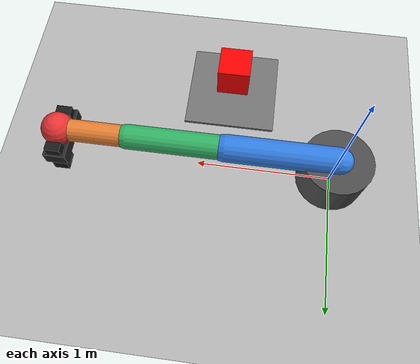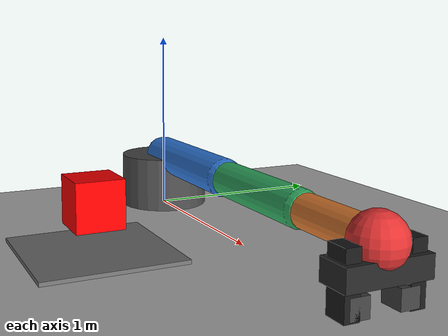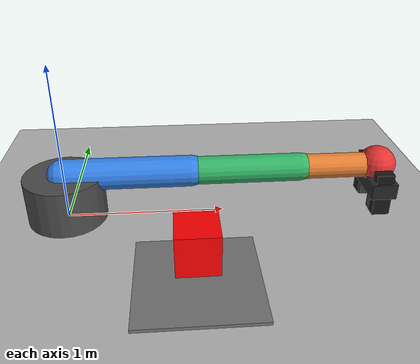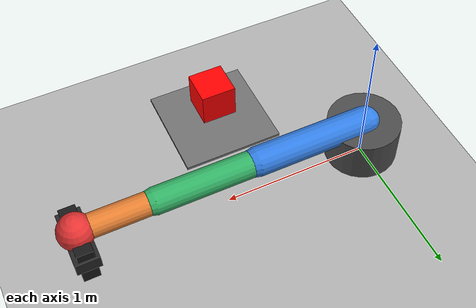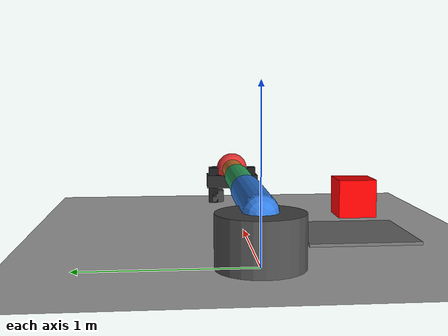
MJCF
<mujoco model="three_dof_robot_arm">

    <!-- Simulation settings                                       -->

    <option
        gravity="0 0 -9.81"
        timestep="0.002"/>

    <!-- Visual settings                                           -->

    <visual>
        <headlight
            ambient="0.4 0.4 0.4"
            diffuse="0.8 0.8 0.8"
            specular="0.2 0.2 0.2"/>
    </visual>

    <!-- WORLD                                                     -->

    <worldbody>

        <!-- Lighting                                               -->

        <light
            name="camera_light"
            pos="0 0 5"
            dir="0 0 -1"
            directional="true"
            diffuse="1 1 1"
            specular="0.3 0.3 0.3"/>

        <!-- Vision camera                                          -->

        <camera
            name="workspace_camera"
            pos="0 0 4.5"
            quat="1 0 0 0"
            fovy="90"/>

        <!-- Ground                                                  -->

        <geom
            name="ground"
            type="plane"
            size="5 5 0.1"
            rgba="0.7 0.7 0.7 1"
            friction="1.5 0.1 0.1"
            condim="3"/>

        <!-- CUBE SUPPORT PLATFORM                                  -->

        <geom
            name="cube_platform"
            type="box"
            pos="0.8 -0.7 0.01"
            size="0.35 0.35 0.01"
            rgba="0.45 0.45 0.45 1"
            friction="2 0.3 0.1"
            condim="3"/>

        <!-- ROBOT BASE                                              -->

        <body
            name="base"
            pos="0 0 0">

            <geom
                name="base_geom"
                type="cylinder"
                size="0.25 0.15"
                pos="0 0 0.15"
                rgba="0.3 0.3 0.3 1"/>

            <!-- JOINT 1 + LINK 1                                   -->

            <body
                name="link1"
                pos="0 0 0.3">

                <joint
                    name="joint1"
                    type="hinge"
                    axis="0 0 1"
                    range="-180 180"
                    damping="0.5"/>

                <geom
                    name="link1_geom"
                    type="capsule"
                    fromto="0 0 0 0.8 0 0"
                    size="0.10"
                    rgba="0.2 0.5 0.9 1"/>

                <!-- JOINT 2 + LINK 2                                   -->

                <body
                    name="link2"
                    pos="0.8 0 0">

                    <joint
                        name="joint2"
                        type="hinge"
                        axis="0 0 1"
                        range="-180 180"
                        damping="0.5"/>

                    <geom
                        name="link2_geom"
                        type="capsule"
                        fromto="0 0 0 0.7 0 0"
                        size="0.09"
                        rgba="0.2 0.7 0.4 1"/>

                    <!-- JOINT 3 + LINK 3                                   -->

                    <body
                        name="link3"
                        pos="0.7 0 0">

                        <joint
                            name="joint3"
                            type="hinge"
                            axis="0 0 1"
                            range="-180 180"
                            damping="0.5"/>

                        <geom
                            name="link3_geom"
                            type="capsule"
                            fromto="0 0 0 0.5 0 0"
                            size="0.08"
                            rgba="0.9 0.5 0.2 1"/>

                        <!-- END EFFECTOR                                      -->

                        <geom
                            name="end_effector"
                            type="sphere"
                            pos="0.5 0 0"
                            size="0.12"
                            rgba="0.9 0.2 0.2 1"/>

                        <!-- GRIPPER PALM                                      -->

                        <body
                            name="gripper_palm"
                            pos="0.5 0 -0.10">

                            <geom
                                name="gripper_palm_geom"
                                type="box"
                                size="0.08 0.20 0.05"
                                rgba="0.15 0.15 0.15 1"
                                friction="2 0.2 0.1"
                                condim="3"/>

                            <!-- VERTICAL GRIPPER SLIDE                         -->

                            <body
                                name="gripper_vertical"
                                pos="0 0 0">

                                <inertial
                                    pos="0 0 0"
                                    mass="0.20"
                                    diaginertia="0.001 0.001 0.001"/>

                                <joint
                                    name="gripper_vertical_joint"
                                    type="slide"
                                    axis="0 0 1"
                                    range="-0.15 0.10"
                                    limited="true"
                                    damping="2"/>

                                <!-- FINGER ASSEMBLY                              -->

                                <!-- LEFT FINGER -->

                                <body
                                    name="gripper_left"
                                    pos="0 -0.15 -0.03">

                                    <joint
                                        name="gripper_left_joint"
                                        type="slide"
                                        axis="0 1 0"
                                        range="0 0.11"
                                        limited="true"
                                        damping="2"/>

                                    <geom
                                        name="gripper_left_finger"
                                        type="box"
                                        size="0.055 0.035 0.14"
                                        rgba="0.10 0.10 0.10 1"
                                        mass="0.08"
                                        friction="2.5 0.3 0.1"
                                        condim="3"/>

                                    <geom
                                        name="gripper_left_pad"
                                        type="box"
                                        pos="0 0.035 -0.09"
                                        size="0.055 0.045 0.045"
                                        rgba="0.25 0.25 0.25 1"
                                        friction="3 0.4 0.1"
                                        condim="3"/>

                                </body>

                                <!-- RIGHT FINGER -->

                                <body
                                    name="gripper_right"
                                    pos="0 0.15 -0.03">

                                    <joint
                                        name="gripper_right_joint"
                                        type="slide"
                                        axis="0 -1 0"
                                        range="0 0.11"
                                        limited="true"
                                        damping="2"/>

                                    <geom
                                        name="gripper_right_finger"
                                        type="box"
                                        size="0.055 0.035 0.14"
                                        rgba="0.10 0.10 0.10 1"
                                        mass="0.08"
                                        friction="2.5 0.3 0.1"
                                        condim="3"/>

                                    <geom
                                        name="gripper_right_pad"
                                        type="box"
                                        pos="0 -0.035 -0.09"
                                        size="0.055 0.045 0.045"
                                        rgba="0.25 0.25 0.25 1"
                                        friction="3 0.4 0.1"
                                        condim="3"/>

                                </body>

                            </body>

                        </body>

                    </body>

                </body>

            </body>

        </body>

        <!-- RED TARGET CUBE                                        -->

        <body
            name="target_object"
            pos="0.8 -0.7 0.25">

            <freejoint/>

            <geom
                name="target_object_geom"
                type="box"
                size="0.12 0.12 0.12"
                rgba="1 0 0 1"
                mass="0.5"
                friction="2.5 0.3 0.1"
                condim="3"/>

        </body>

    </worldbody>

    <!-- ACTUATORS                                                 -->

    <actuator>

        <motor
            name="motor1"
            joint="joint1"
            gear="50"/>

        <motor
            name="motor2"
            joint="joint2"
            gear="40"/>

        <motor
            name="motor3"
            joint="joint3"
            gear="30"/>

        <motor
            name="gripper_left_motor"
            joint="gripper_left_joint"
            gear="20"/>

        <motor
            name="gripper_right_motor"
            joint="gripper_right_joint"
            gear="20"/>

        <motor
            name="gripper_vertical_motor"
            joint="gripper_vertical_joint"
            gear="50"/>

    </actuator>

    <!-- GRASP CONSTRAINT                                          -->

    <equality>

        <weld
            name="grasp_weld"
            body1="gripper_palm"
            body2="target_object"
            active="false"
            solref="0.01 1"
            solimp="0.9 0.95 0.001"/>

    </equality>

</mujoco>
